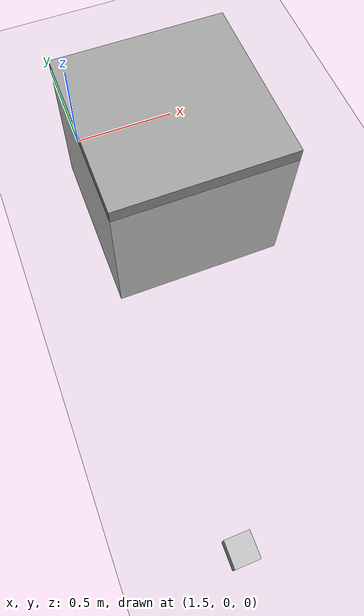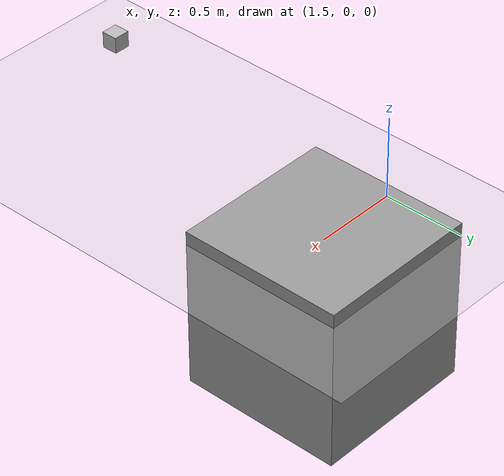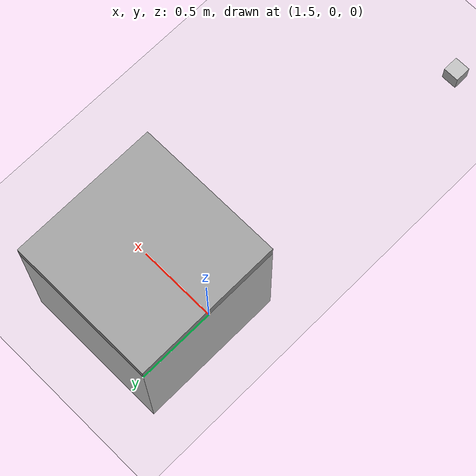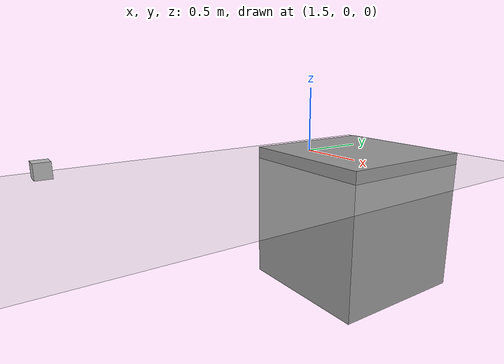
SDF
<sdf version='1.6'>
  <world name='default'>

    <!-- A global light source -->
    <include>
      <uri>model://sun</uri>
    </include>

    <!-- A ground plane -->
    <include>
      <uri>model://ground_plane</uri>
    </include>

    <!-- Custom default camera pose -->
    <gui fullscreen='0'>
      <camera name='user_camera'>
        <pose frame=''>0.988075 -1.38036 0.814254 0 0.423643 2.1642</pose>
        <view_controller>orbit</view_controller>
        <projection_type>perspective</projection_type>
      </camera>
    </gui>

    <!-- Custom physics settings -->
    <physics type='ode'>
      <max_step_size>0.0005</max_step_size>
      <real_time_factor>1</real_time_factor>
      <real_time_update_rate>1000</real_time_update_rate>
    </physics>

    <model name='Step'>
      <link name='link_3'>
        <pose frame=''>0 0 -0 0 -0 0</pose>
        <inertial>
          <mass>1</mass>
          <inertia>
            <ixx>0.166667</ixx>
            <ixy>0</ixy>
            <ixz>0</ixz>
            <iyy>0.166667</iyy>
            <iyz>0</iyz>
            <izz>0.166667</izz>
          </inertia>
          <pose frame=''>0 0 0 0 -0 0</pose>
        </inertial>
        <self_collide>0</self_collide>
        <kinematic>0</kinematic>
        <visual name='visual'>
          <pose frame=''>0 0 0 0 -0 0</pose>
          <geometry>
            <box>
              <size>1 1 1</size>
            </box>
          </geometry>
          <material>
            <lighting>1</lighting>
            <script>
              <uri>file://media/materials/scripts/gazebo.material</uri>
              <name>Gazebo/Grey</name>
            </script>
            <ambient>0.3 0.3 0.3 1</ambient>
            <diffuse>0.7 0.7 0.7 1</diffuse>
            <specular>0.01 0.01 0.01 1</specular>
            <emissive>0 0 0 1</emissive>
            <shader type='vertex'>
              <normal_map>__default__</normal_map>
            </shader>
          </material>
          <cast_shadows>1</cast_shadows>
          <transparency>0</transparency>
        </visual>
        <collision name='collision'>
          <laser_retro>0</laser_retro>
          <max_contacts>10</max_contacts>
          <pose frame=''>0 0 0 0 -0 0</pose>
          <geometry>
            <box>
              <size>1 1 1</size>
            </box>
          </geometry>
          <surface>
            <friction>
              <ode>
                <mu>1</mu>
                <mu2>1</mu2>
                <fdir1>0 0 0</fdir1>
                <slip1>0</slip1>
                <slip2>0</slip2>
              </ode>
              <torsional>
                <coefficient>1</coefficient>
                <patch_radius>0</patch_radius>
                <surface_radius>0</surface_radius>
                <use_patch_radius>1</use_patch_radius>
                <ode>
                  <slip>0</slip>
                </ode>
              </torsional>
            </friction>
            <bounce>
              <restitution_coefficient>0</restitution_coefficient>
              <threshold>1e+06</threshold>
            </bounce>
            <contact>
              <collide_without_contact>0</collide_without_contact>
              <collide_without_contact_bitmask>1</collide_without_contact_bitmask>
              <collide_bitmask>1</collide_bitmask>
              <ode>
                <soft_cfm>0</soft_cfm>
                <soft_erp>0.2</soft_erp>
                <kp>1e+13</kp>
                <kd>1</kd>
                <max_vel>0.01</max_vel>
                <min_depth>0</min_depth>
              </ode>
              <bullet>
                <split_impulse>1</split_impulse>
                <split_impulse_penetration_threshold>-0.01</split_impulse_penetration_threshold>
                <soft_cfm>0</soft_cfm>
                <soft_erp>0.2</soft_erp>
                <kp>1e+13</kp>
                <kd>1</kd>
              </bullet>
            </contact>
          </surface>
        </collision>
      </link>
      <static>1</static>
      <allow_auto_disable>1</allow_auto_disable>
      <pose frame=''>2 0 -0.42 0 -0 0</pose>
    </model>

  <model name="camera">
    <link name="link">
      <pose>1.5 -2 0.1 0 0 1.57</pose>
      <inertial>
        <mass>0.1</mass>
      </inertial>
      <collision name="collision">
        <geometry>
          <box>
            <size>0.1 0.1 0.1</size>
          </box>
        </geometry>
      </collision>
      <visual name="visual">
        <geometry>
          <box>
            <size>0.1 0.1 0.1</size>
          </box>
        </geometry>
      </visual>
      <sensor name="camera" type="camera">
        <camera>
          <horizontal_fov>1.047</horizontal_fov>
          <image>
            <width>640</width>
            <height>480</height>
          </image>
          <clip>
            <near>0.1</near>
            <far>100</far>
          </clip>
        </camera>
        <always_on>1</always_on>
        <update_rate>30</update_rate>
        <visualize>true</visualize>
      </sensor>
    </link>
  </model>

  </world>
</sdf>
